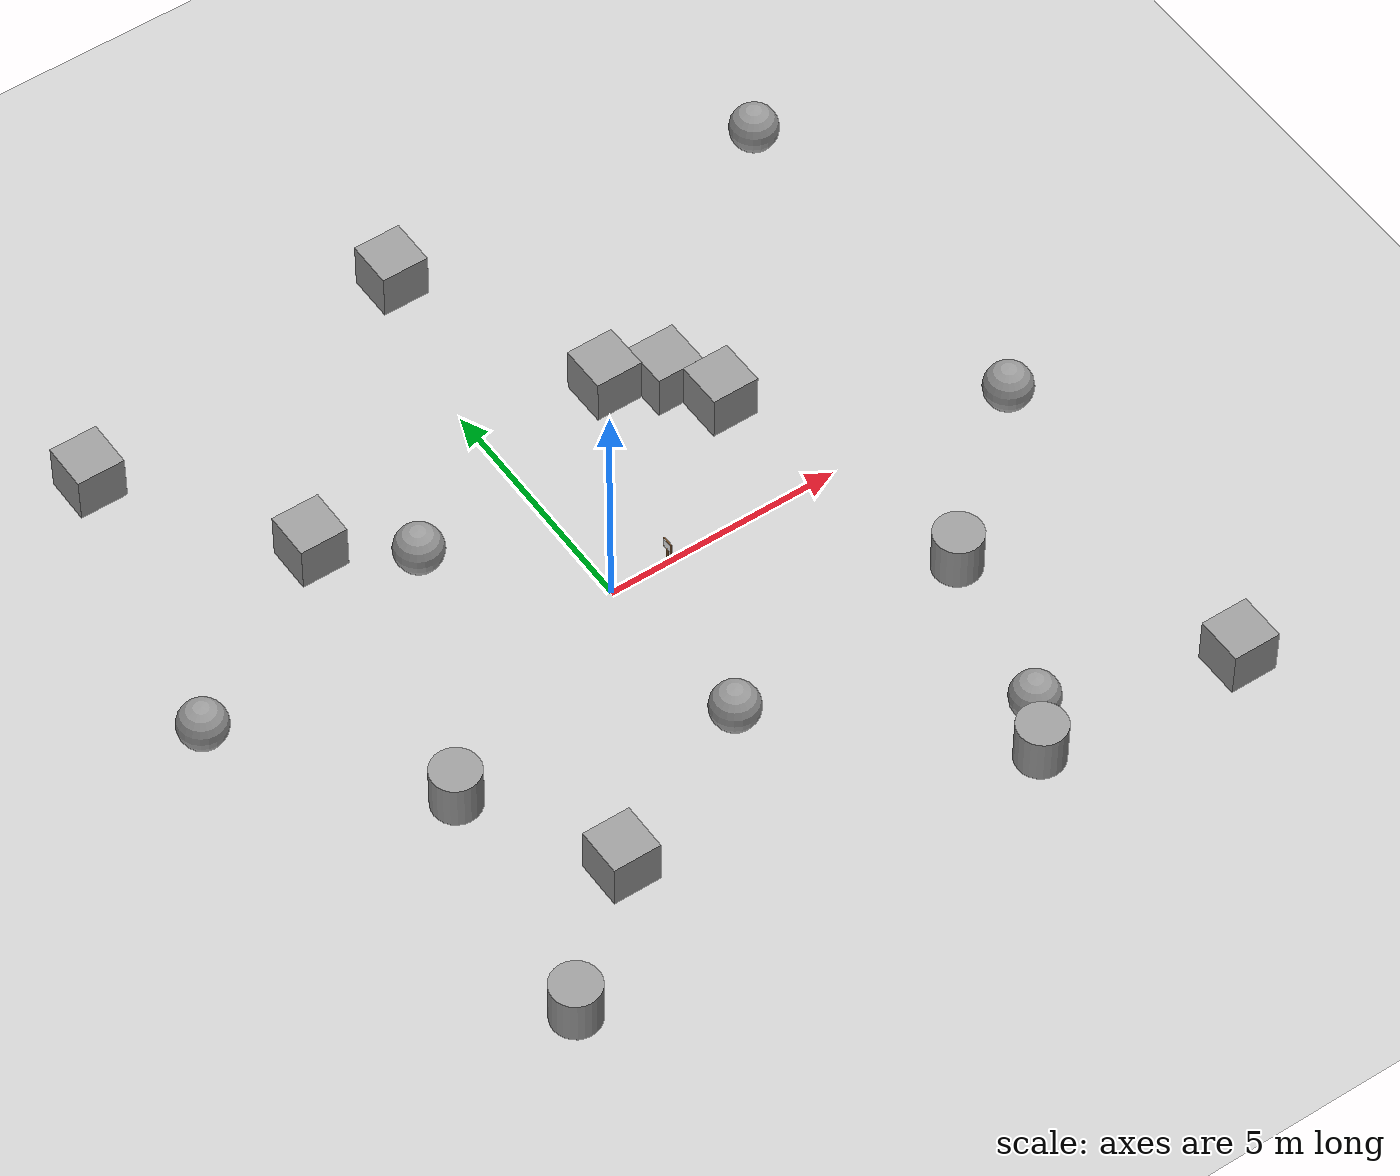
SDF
<sdf version="1.6">
 <world name="default">
  <light name="sun" type="directional">
   <pose>0 0 10 0 -0 0</pose>
   <diffuse>0.8 0.8 0.8 1</diffuse>
   <specular>0.2 0.2 0.2 1</specular>
   <attenuation>
    <range>1000</range>
    <constant>0.9</constant>
    <linear>0.01</linear>
    <quadratic>0.001</quadratic>
   </attenuation>
   <direction>-0.5 0.1 -0.9</direction>
  </light>
  <model name="ground_plane">
   <static>1</static>
   <link name="link">
    <collision name="collision">
     <geometry><plane><normal>0 0 1</normal><size>100 100</size></plane></geometry>
     <surface>
      <contact><collide_bitmask>65535</collide_bitmask></contact>
      <friction><ode><mu>100</mu><mu2>50</mu2></ode></friction>
     </surface>
    </collision>
    <visual name="visual">
     <cast_shadows>0</cast_shadows>
     <geometry><plane><normal>0 0 1</normal><size>100 100</size></plane></geometry>
     <material>
      <script><uri>file://media/materials/scripts/gazebo.material</uri><name>Gazebo/Grey</name></script>
     </material>
    </visual>
   </link>
  </model>
  <gravity>0 0 -9.8</gravity>
  <magnetic_field>6e-06 2.3e-05 -4.2e-05</magnetic_field>
  <atmosphere type="adiabatic"/>
  <physics name="default_physics" default="0" type="ode">
   <max_step_size>0.001</max_step_size>
   <real_time_factor>1</real_time_factor>
   <real_time_update_rate>1000</real_time_update_rate>
  </physics>
  <scene><ambient>0.4 0.4 0.4 1</ambient><background>0.7 0.7 0.7 1</background><shadows>1</shadows></scene>
  <audio><device>default</device></audio>
  <spherical_coordinates>
   <surface_model>EARTH_WGS84</surface_model>
   <latitude_deg>0</latitude_deg>
   <longitude_deg>0</longitude_deg>
   <elevation>0</elevation>
   <heading_deg>0</heading_deg>
  </spherical_coordinates>
  <model name="unit_box">
   <pose>-3.4049 -5.31641 0.499995 0 1e-05 0</pose>
   <link name="link">
    <inertial>
     <mass>1</mass>
     <inertia>
      <ixx>0.166667</ixx>
      <ixy>0</ixy>
      <ixz>0</ixz>
      <iyy>0.166667</iyy>
      <iyz>0</iyz>
      <izz>0.166667</izz>
     </inertia>
    </inertial>
    <collision name="collision"><geometry><box><size>1 1 1</size></box></geometry></collision>
    <visual name="visual">
     <geometry><box><size>1 1 1</size></box></geometry>
     <material>
      <script><name>Gazebo/Grey</name><uri>file://media/materials/scripts/gazebo.material</uri></script>
     </material>
    </visual>
   </link>
  </model>
  <model name="unit_box_0">
   <pose>-4.10123 3.8136 0.499995 -1e-05 -0 -0</pose>
   <link name="link">
    <inertial>
     <mass>1</mass>
     <inertia>
      <ixx>0.166667</ixx>
      <ixy>0</ixy>
      <ixz>0</ixz>
      <iyy>0.166667</iyy>
      <iyz>0</iyz>
      <izz>0.166667</izz>
     </inertia>
    </inertial>
    <collision name="collision"><geometry><box><size>1 1 1</size></box></geometry></collision>
    <visual name="visual">
     <geometry><box><size>1 1 1</size></box></geometry>
     <material>
      <script><name>Gazebo/Grey</name><uri>file://media/materials/scripts/gazebo.material</uri></script>
     </material>
    </visual>
   </link>
  </model>
  <model name="unit_sphere">
   <pose>0.161192 -3.7282 0.5 0 -0 0</pose>
   <link name="link">
    <inertial>
     <mass>1</mass>
     <inertia><ixx>0.1</ixx><ixy>0</ixy><ixz>0</ixz><iyy>0.1</iyy><iyz>0</iyz><izz>0.1</izz></inertia>
    </inertial>
    <collision name="collision"><geometry><sphere><radius>0.5</radius></sphere></geometry></collision>
    <visual name="visual">
     <geometry><sphere><radius>0.5</radius></sphere></geometry>
     <material>
      <script><name>Gazebo/Grey</name><uri>file://media/materials/scripts/gazebo.material</uri></script>
     </material>
    </visual>
   </link>
  </model>
  <model name="unit_sphere_0">
   <pose>-2.55111 2.54212 0.5 0 -0 0</pose>
   <link name="link">
    <inertial>
     <mass>1</mass>
     <inertia><ixx>0.1</ixx><ixy>0</ixy><ixz>0</ixz><iyy>0.1</iyy><iyz>0</iyz><izz>0.1</izz></inertia>
    </inertial>
    <collision name="collision"><geometry><sphere><radius>0.5</radius></sphere></geometry></collision>
    <visual name="visual">
     <geometry><sphere><radius>0.5</radius></sphere></geometry>
     <material>
      <script><name>Gazebo/Grey</name><uri>file://media/materials/scripts/gazebo.material</uri></script>
     </material>
    </visual>
   </link>
  </model>
  <model name="unit_cylinder">
   <pose>4.24787 -7.48664 0.499991 -0 -0 -1.2e-05</pose>
   <link name="link">
    <inertial>
     <mass>1</mass>
     <inertia><ixx>0.145833</ixx><ixy>0</ixy><ixz>0</ixz><iyy>0.145833</iyy><iyz>0</iyz><izz>0.125</izz></inertia>
    </inertial>
    <collision name="collision">
     <geometry><cylinder><radius>0.5</radius><length>1</length></cylinder></geometry>
    </collision>
    <visual name="visual">
     <geometry><cylinder><radius>0.5</radius><length>1</length></cylinder></geometry>
     <material>
      <script><name>Gazebo/Grey</name><uri>file://media/materials/scripts/gazebo.material</uri></script>
     </material>
    </visual>
   </link>
  </model>
  <model name="unit_cylinder_1">
   <pose>5.59647 -3.09919 0.499993 -3e-06 2e-06 0</pose>
   <link name="link">
    <inertial>
     <mass>1</mass>
     <inertia><ixx>0.145833</ixx><ixy>0</ixy><ixz>0</ixz><iyy>0.145833</iyy><iyz>0</iyz><izz>0.125</izz></inertia>
    </inertial>
    <collision name="collision">
     <geometry><cylinder><radius>0.5</radius><length>1</length></cylinder></geometry>
    </collision>
    <visual name="visual">
     <geometry><cylinder><radius>0.5</radius><length>1</length></cylinder></geometry>
     <material>
      <script><name>Gazebo/Grey</name><uri>file://media/materials/scripts/gazebo.material</uri></script>
     </material>
    </visual>
   </link>
  </model>
  <model name="unit_box_1">
   <pose>2.59734 4.02785 0.499995 1e-05 -0 0.00782</pose>
   <link name="link">
    <inertial>
     <mass>1</mass>
     <inertia>
      <ixx>0.166667</ixx>
      <ixy>0</ixy>
      <ixz>0</ixz>
      <iyy>0.166667</iyy>
      <iyz>0</iyz>
      <izz>0.166667</izz>
     </inertia>
    </inertial>
    <collision name="collision"><geometry><box><size>1 1 1</size></box></geometry></collision>
    <visual name="visual">
     <geometry><box><size>1 1 1</size></box></geometry>
     <material>
      <script><name>Gazebo/Grey</name><uri>file://media/materials/scripts/gazebo.material</uri></script>
     </material>
    </visual>
   </link>
  </model>
  <model name="unit_cylinder_2">
   <pose>-4.98063 -2.3723 0.499998 3e-06 -3e-06 0</pose>
   <link name="link">
    <inertial>
     <mass>1</mass>
     <inertia><ixx>0.145833</ixx><ixy>0</ixy><ixz>0</ixz><iyy>0.145833</iyy><iyz>0</iyz><izz>0.125</izz></inertia>
    </inertial>
    <collision name="collision">
     <geometry><cylinder><radius>0.5</radius><length>1</length></cylinder></geometry>
    </collision>
    <visual name="visual">
     <geometry><cylinder><radius>0.5</radius><length>1</length></cylinder></geometry>
     <material>
      <script><name>Gazebo/Grey</name><uri>file://media/materials/scripts/gazebo.material</uri></script>
     </material>
    </visual>
   </link>
  </model>
  <model name="unit_box_2">
   <pose>4.16233 2.47665 0.499995 0 1e-05 0.008036</pose>
   <link name="link">
    <inertial>
     <mass>1</mass>
     <inertia>
      <ixx>0.166667</ixx>
      <ixy>0</ixy>
      <ixz>0</ixz>
      <iyy>0.166667</iyy>
      <iyz>0</iyz>
      <izz>0.166667</izz>
     </inertia>
    </inertial>
    <collision name="collision"><geometry><box><size>1 1 1</size></box></geometry></collision>
    <visual name="visual">
     <geometry><box><size>1 1 1</size></box></geometry>
     <material>
      <script><name>Gazebo/Grey</name><uri>file://media/materials/scripts/gazebo.material</uri></script>
     </material>
    </visual>
   </link>
  </model>
  <model name="unit_sphere_2">
   <pose>4.75551 -6.6154 0.5 -0.014204 0.009421 0.00337</pose>
   <link name="link">
    <inertial>
     <mass>1</mass>
     <inertia><ixx>0.1</ixx><ixy>0</ixy><ixz>0</ixz><iyy>0.1</iyy><iyz>0</iyz><izz>0.1</izz></inertia>
    </inertial>
    <collision name="collision"><geometry><sphere><radius>0.5</radius></sphere></geometry></collision>
    <visual name="visual">
     <geometry><sphere><radius>0.5</radius></sphere></geometry>
     <material>
      <script><name>Gazebo/Grey</name><uri>file://media/materials/scripts/gazebo.material</uri></script>
     </material>
    </visual>
   </link>
  </model>
  <model name="unit_box_3">
   <pose>8.48757 -7.80086 0.499995 0 1e-05 0</pose>
   <link name="link">
    <inertial>
     <mass>1</mass>
     <inertia>
      <ixx>0.166667</ixx>
      <ixy>0</ixy>
      <ixz>0</ixz>
      <iyy>0.166667</iyy>
      <iyz>0</iyz>
      <izz>0.166667</izz>
     </inertia>
    </inertial>
    <collision name="collision"><geometry><box><size>1 1 1</size></box></geometry></collision>
    <visual name="visual">
     <geometry><box><size>1 1 1</size></box></geometry>
     <material>
      <script><name>Gazebo/Grey</name><uri>file://media/materials/scripts/gazebo.material</uri></script>
     </material>
    </visual>
   </link>
  </model>
  <model name="unit_box_4">
   <pose>-6.61086 7.51602 0.499995 -1e-05 -0 -0</pose>
   <link name="link">
    <inertial>
     <mass>1</mass>
     <inertia>
      <ixx>0.166667</ixx>
      <ixy>0</ixy>
      <ixz>0</ixz>
      <iyy>0.166667</iyy>
      <iyz>0</iyz>
      <izz>0.166667</izz>
     </inertia>
    </inertial>
    <collision name="collision"><geometry><box><size>1 1 1</size></box></geometry></collision>
    <visual name="visual">
     <geometry><box><size>1 1 1</size></box></geometry>
     <material>
      <script><name>Gazebo/Grey</name><uri>file://media/materials/scripts/gazebo.material</uri></script>
     </material>
    </visual>
   </link>
  </model>
  <model name="unit_cylinder_3">
   <pose>-5.81048 -7.4181 0.499998 3e-06 4e-06 -0</pose>
   <link name="link">
    <inertial>
     <mass>1</mass>
     <inertia><ixx>0.145833</ixx><ixy>0</ixy><ixz>0</ixz><iyy>0.145833</iyy><iyz>0</iyz><izz>0.125</izz></inertia>
    </inertial>
    <collision name="collision">
     <geometry><cylinder><radius>0.5</radius><length>1</length></cylinder></geometry>
    </collision>
    <visual name="visual">
     <geometry><cylinder><radius>0.5</radius><length>1</length></cylinder></geometry>
     <material>
      <script><name>Gazebo/Grey</name><uri>file://media/materials/scripts/gazebo.material</uri></script>
     </material>
    </visual>
   </link>
  </model>
  <model name="unit_sphere_3">
   <pose>8.48345 7.53587 0.5 0 -0 0</pose>
   <link name="link">
    <inertial>
     <mass>1</mass>
     <inertia><ixx>0.1</ixx><ixy>0</ixy><ixz>0</ixz><iyy>0.1</iyy><iyz>0</iyz><izz>0.1</izz></inertia>
    </inertial>
    <collision name="collision"><geometry><sphere><radius>0.5</radius></sphere></geometry></collision>
    <visual name="visual">
     <geometry><sphere><radius>0.5</radius></sphere></geometry>
     <material>
      <script><name>Gazebo/Grey</name><uri>file://media/materials/scripts/gazebo.material</uri></script>
     </material>
    </visual>
   </link>
  </model>
  <model name="unit_box_5">
   <pose>0.71776 8.45939 0.499995 0 1e-05 0</pose>
   <link name="link">
    <inertial>
     <mass>1</mass>
     <inertia>
      <ixx>0.166667</ixx>
      <ixy>0</ixy>
      <ixz>0</ixz>
      <iyy>0.166667</iyy>
      <iyz>0</iyz>
      <izz>0.166667</izz>
     </inertia>
    </inertial>
    <collision name="collision"><geometry><box><size>1 1 1</size></box></geometry></collision>
    <visual name="visual">
     <geometry><box><size>1 1 1</size></box></geometry>
     <material>
      <script><name>Gazebo/Grey</name><uri>file://media/materials/scripts/gazebo.material</uri></script>
     </material>
    </visual>
   </link>
  </model>
  <model name="unit_sphere_4">
   <pose>8.67849 -0.485052 0.5 0 -0 0</pose>
   <link name="link">
    <inertial>
     <mass>1</mass>
     <inertia><ixx>0.1</ixx><ixy>0</ixy><ixz>0</ixz><iyy>0.1</iyy><iyz>0</iyz><izz>0.1</izz></inertia>
    </inertial>
    <collision name="collision"><geometry><sphere><radius>0.5</radius></sphere></geometry></collision>
    <visual name="visual">
     <geometry><sphere><radius>0.5</radius></sphere></geometry>
     <material>
      <script><name>Gazebo/Grey</name><uri>file://media/materials/scripts/gazebo.material</uri></script>
     </material>
    </visual>
   </link>
  </model>
  <model name="unit_box_6">
   <pose>3.60179 3.47234 0.499995 1e-05 -0 0.00791</pose>
   <link name="link">
    <inertial>
     <mass>1</mass>
     <inertia>
      <ixx>0.166667</ixx>
      <ixy>0</ixy>
      <ixz>0</ixz>
      <iyy>0.166667</iyy>
      <iyz>0</iyz>
      <izz>0.166667</izz>
     </inertia>
    </inertial>
    <collision name="collision"><geometry><box><size>1 1 1</size></box></geometry></collision>
    <visual name="visual">
     <geometry><box><size>1 1 1</size></box></geometry>
     <material>
      <script><name>Gazebo/Grey</name><uri>file://media/materials/scripts/gazebo.material</uri></script>
     </material>
    </visual>
   </link>
  </model>
  <model name="unit_sphere_1">
   <pose>-7.97349 1.37373 0.5 0 -0 0</pose>
   <link name="link">
    <inertial>
     <mass>1</mass>
     <inertia><ixx>0.1</ixx><ixy>0</ixy><ixz>0</ixz><iyy>0.1</iyy><iyz>0</iyz><izz>0.1</izz></inertia>
    </inertial>
    <collision name="collision"><geometry><sphere><radius>0.5</radius></sphere></geometry></collision>
    <visual name="visual">
     <geometry><sphere><radius>0.5</radius></sphere></geometry>
     <material>
      <script><name>Gazebo/Grey</name><uri>file://media/materials/scripts/gazebo.material</uri></script>
     </material>
    </visual>
   </link>
  </model>
  <model name="chess_wood">
   <link name="link_0">
    <inertial>
     <mass>1</mass>
     <inertia><ixx>0.145833</ixx><ixy>0</ixy><ixz>0</ixz><iyy>0.145833</iyy><iyz>0</iyz><izz>0.125</izz></inertia>
    </inertial>
    <pose>-0.017932 0.660168 -0.097628 0 -0 0</pose>
    <visual name="visual">
     <geometry><cylinder><radius>0.02</radius><length>0.4</length></cylinder></geometry>
     <material>
      <lighting>1</lighting>
      <script><uri>file://media/materials/scripts/gazebo.material</uri><name>Gazebo/Wood</name></script>
      <shader type="vertex"><normal_map>__default__</normal_map></shader>
      <ambient>0.3 0.3 0.3 1</ambient>
      <diffuse>0.7 0.7 0.7 1</diffuse>
      <specular>0.01 0.01 0.01 1</specular>
      <emissive>0 0 0 1</emissive>
     </material>
    </visual>
    <collision name="collision">
     <geometry><cylinder><radius>0.02</radius><length>0.4</length></cylinder></geometry>
     <surface>
      <friction>
       <ode><mu>1</mu><mu2>1</mu2><fdir1>0 0 0</fdir1><slip1>0</slip1><slip2>0</slip2></ode>
       <torsional>
        <coefficient>1</coefficient>
        <patch_radius>0</patch_radius>
        <surface_radius>0</surface_radius>
        <use_patch_radius>1</use_patch_radius>
        <ode><slip>0</slip></ode>
       </torsional>
      </friction>
      <bounce><restitution_coefficient>0</restitution_coefficient><threshold>1e+06</threshold></bounce>
      <contact>
       <collide_without_contact>0</collide_without_contact>
       <collide_without_contact_bitmask>1</collide_without_contact_bitmask>
       <collide_bitmask>1</collide_bitmask>
       <ode>
        <soft_cfm>0</soft_cfm>
        <soft_erp>0.2</soft_erp>
        <kp>1e+13</kp>
        <kd>1</kd>
        <max_vel>0.01</max_vel>
        <min_depth>0</min_depth>
       </ode>
       <bullet>
        <split_impulse>1</split_impulse>
        <split_impulse_penetration_threshold>-0.01</split_impulse_penetration_threshold>
        <soft_cfm>0</soft_cfm>
        <soft_erp>0.2</soft_erp>
        <kp>1e+13</kp>
        <kd>1</kd>
       </bullet>
      </contact>
     </surface>
    </collision>
   </link>
   <link name="link_1">
    <inertial>
     <mass>1.21407</mass>
     <inertia>
      <ixx>0.00864359</ixx>
      <ixy>0</ixy>
      <ixz>0</ixz>
      <iyy>0.00421539</iyy>
      <iyz>0</iyz>
      <izz>0.00446773</izz>
     </inertia>
    </inertial>
    <pose>-0.025899 0.66382 0.194379 0 -0 0</pose>
    <visual name="visual">
     <geometry><box><size>0.013978 0.209676 0.203642</size></box></geometry>
     <material>
      <script><uri>file://scripts</uri><uri>file://textures</uri><name>chess/standard</name></script>
      <emissive>0 0 0 1</emissive>
      <shader type="vertex"><normal_map>__default__</normal_map></shader>
      <ambient>1 1 1 1</ambient>
      <diffuse>1 1 1 1</diffuse>
      <specular>0 0 0 1</specular>
     </material>
    </visual>
    <collision name="collision">
     <geometry><box><size>0.013978 0.209676 0.203642</size></box></geometry>
     <surface>
      <friction>
       <ode><mu>1</mu><mu2>1</mu2><fdir1>0 0 0</fdir1><slip1>0</slip1><slip2>0</slip2></ode>
       <torsional>
        <coefficient>1</coefficient>
        <patch_radius>0</patch_radius>
        <surface_radius>0</surface_radius>
        <use_patch_radius>1</use_patch_radius>
        <ode><slip>0</slip></ode>
       </torsional>
      </friction>
      <bounce><restitution_coefficient>0</restitution_coefficient><threshold>1e+06</threshold></bounce>
      <contact>
       <collide_without_contact>0</collide_without_contact>
       <collide_without_contact_bitmask>1</collide_without_contact_bitmask>
       <collide_bitmask>1</collide_bitmask>
       <ode>
        <soft_cfm>0</soft_cfm>
        <soft_erp>0.2</soft_erp>
        <kp>1e+13</kp>
        <kd>1</kd>
        <max_vel>0.01</max_vel>
        <min_depth>0</min_depth>
       </ode>
       <bullet>
        <split_impulse>1</split_impulse>
        <split_impulse_penetration_threshold>-0.01</split_impulse_penetration_threshold>
        <soft_cfm>0</soft_cfm>
        <soft_erp>0.2</soft_erp>
        <kp>1e+13</kp>
        <kd>1</kd>
       </bullet>
      </contact>
     </surface>
    </collision>
   </link>
   <link name="link_1_clone">
    <inertial>
     <mass>0.519809</mass>
     <inertia>
      <ixx>0.00549167</ixx>
      <ixy>0</ixy>
      <ixz>0</ixz>
      <iyy>0.00278045</iyy>
      <iyz>0</iyz>
      <izz>0.00275135</izz>
     </inertia>
    </inertial>
    <pose>-0.015207 0.663184 0.195267 0 -0 0</pose>
    <visual name="visual">
     <geometry><box><size>0.021523 0.251103 0.252437</size></box></geometry>
     <material>
      <script><uri>file://scripts</uri><uri>file://textures</uri><name>Gazebo/Wood</name></script>
      <shader type="vertex"><normal_map>__default__</normal_map></shader>
      <ambient>1 1 1 1</ambient>
      <diffuse>1 1 1 1</diffuse>
      <specular>0 0 0 1</specular>
      <emissive>0 0 0 1</emissive>
     </material>
    </visual>
    <collision name="collision">
     <geometry><box><size>0.021523 0.251103 0.252437</size></box></geometry>
     <surface>
      <friction>
       <ode><mu>1</mu><mu2>1</mu2><fdir1>0 0 0</fdir1><slip1>0</slip1><slip2>0</slip2></ode>
       <torsional>
        <coefficient>1</coefficient>
        <patch_radius>0</patch_radius>
        <surface_radius>0</surface_radius>
        <use_patch_radius>1</use_patch_radius>
        <ode><slip>0</slip></ode>
       </torsional>
      </friction>
      <bounce><restitution_coefficient>0</restitution_coefficient><threshold>1e+06</threshold></bounce>
      <contact>
       <collide_without_contact>0</collide_without_contact>
       <collide_without_contact_bitmask>1</collide_without_contact_bitmask>
       <collide_bitmask>1</collide_bitmask>
       <ode>
        <soft_cfm>0</soft_cfm>
        <soft_erp>0.2</soft_erp>
        <kp>1e+13</kp>
        <kd>1</kd>
        <max_vel>0.01</max_vel>
        <min_depth>0</min_depth>
       </ode>
       <bullet>
        <split_impulse>1</split_impulse>
        <split_impulse_penetration_threshold>-0.01</split_impulse_penetration_threshold>
        <soft_cfm>0</soft_cfm>
        <soft_erp>0.2</soft_erp>
        <kp>1e+13</kp>
        <kd>1</kd>
       </bullet>
      </contact>
     </surface>
    </collision>
   </link>
   <link name="link_1_clone_0">
    <inertial>
     <mass>0.238009</mass>
     <inertia>
      <ixx>0.00161175</ixx>
      <ixy>0</ixy>
      <ixz>0</ixz>
      <iyy>0.000787067</iyy>
      <iyz>0</iyz>
      <izz>0.000832042</izz>
     </inertia>
    </inertial>
    <pose>-0.00403 0.665261 0.195247 0 -0 0</pose>
    <visual name="visual">
     <geometry><box><size>0.013624 0.204363 0.198738</size></box></geometry>
     <material>
      <script><uri>file://scripts</uri><uri>file://textures</uri><name>chess/standard</name></script>
      <emissive>0 0 0 1</emissive>
      <shader type="vertex"><normal_map>__default__</normal_map></shader>
      <ambient>1 1 1 1</ambient>
      <diffuse>1 1 1 1</diffuse>
      <specular>0 0 0 1</specular>
     </material>
    </visual>
    <collision name="collision">
     <geometry><box><size>0.013624 0.204363 0.198738</size></box></geometry>
     <surface>
      <friction>
       <ode><mu>1</mu><mu2>1</mu2><fdir1>0 0 0</fdir1><slip1>0</slip1><slip2>0</slip2></ode>
       <torsional>
        <coefficient>1</coefficient>
        <patch_radius>0</patch_radius>
        <surface_radius>0</surface_radius>
        <use_patch_radius>1</use_patch_radius>
        <ode><slip>0</slip></ode>
       </torsional>
      </friction>
      <bounce><restitution_coefficient>0</restitution_coefficient><threshold>1e+06</threshold></bounce>
      <contact>
       <collide_without_contact>0</collide_without_contact>
       <collide_without_contact_bitmask>1</collide_without_contact_bitmask>
       <collide_bitmask>1</collide_bitmask>
       <ode>
        <soft_cfm>0</soft_cfm>
        <soft_erp>0.2</soft_erp>
        <kp>1e+13</kp>
        <kd>1</kd>
        <max_vel>0.01</max_vel>
        <min_depth>0</min_depth>
       </ode>
       <bullet>
        <split_impulse>1</split_impulse>
        <split_impulse_penetration_threshold>-0.01</split_impulse_penetration_threshold>
        <soft_cfm>0</soft_cfm>
        <soft_erp>0.2</soft_erp>
        <kp>1e+13</kp>
        <kd>1</kd>
       </bullet>
      </contact>
     </surface>
    </collision>
   </link>
   <joint name="link_0_JOINT_0" type="fixed">
    <parent>link_0</parent>
    <child>link_1</child>
    <physics>
     <ode><limit><cfm>0</cfm><erp>0.2</erp></limit><suspension><cfm>0</cfm><erp>0.2</erp></suspension></ode>
    </physics>
   </joint>
   <joint name="link_1_JOINT_0_0" type="fixed">
    <parent>link_1</parent>
    <child>link_1_clone_0</child>
    <physics>
     <ode><limit><cfm>0</cfm><erp>0.2</erp></limit><suspension><cfm>0</cfm><erp>0.2</erp></suspension></ode>
    </physics>
   </joint>
   <joint name="link_1_JOINT_0" type="fixed">
    <parent>link_1</parent>
    <child>link_1_clone</child>
    <physics>
     <ode><limit><cfm>0</cfm><erp>0.2</erp></limit><suspension><cfm>0</cfm><erp>0.2</erp></suspension></ode>
    </physics>
   </joint>
   <static>0</static>
   <pose>1.27435 -0.665673 0.294485 0.005182 -0.006655 0.001839</pose>
  </model>
 </world>
</sdf>
